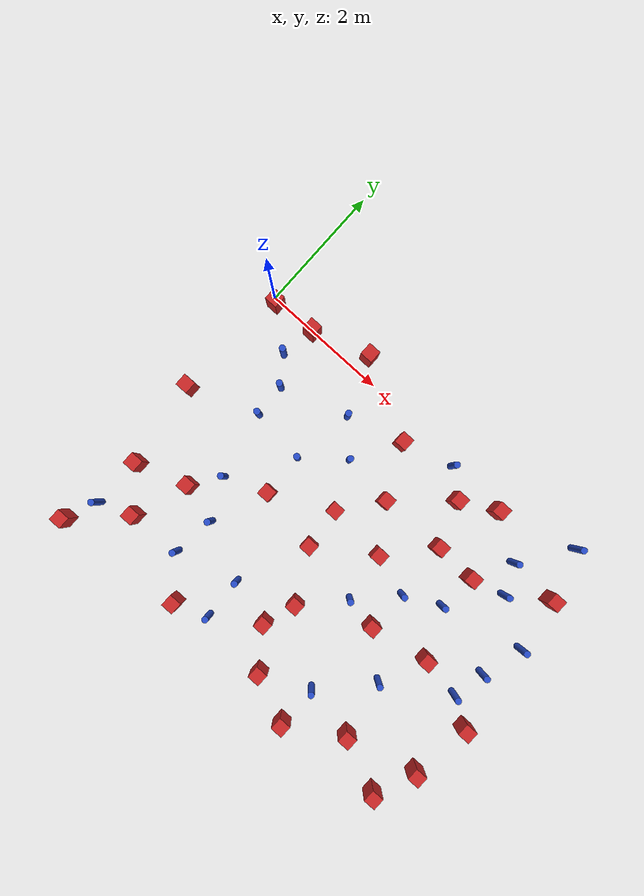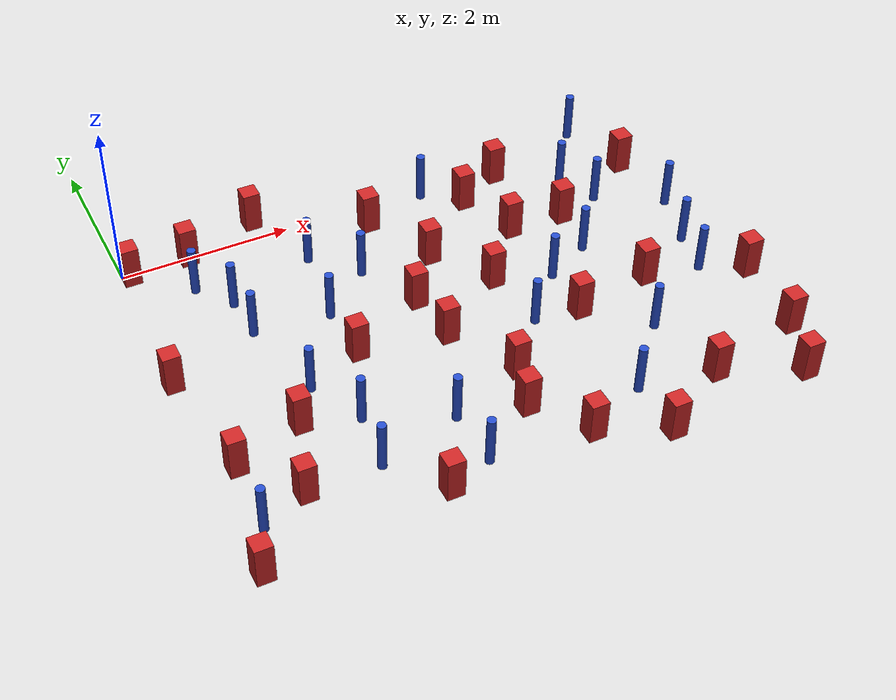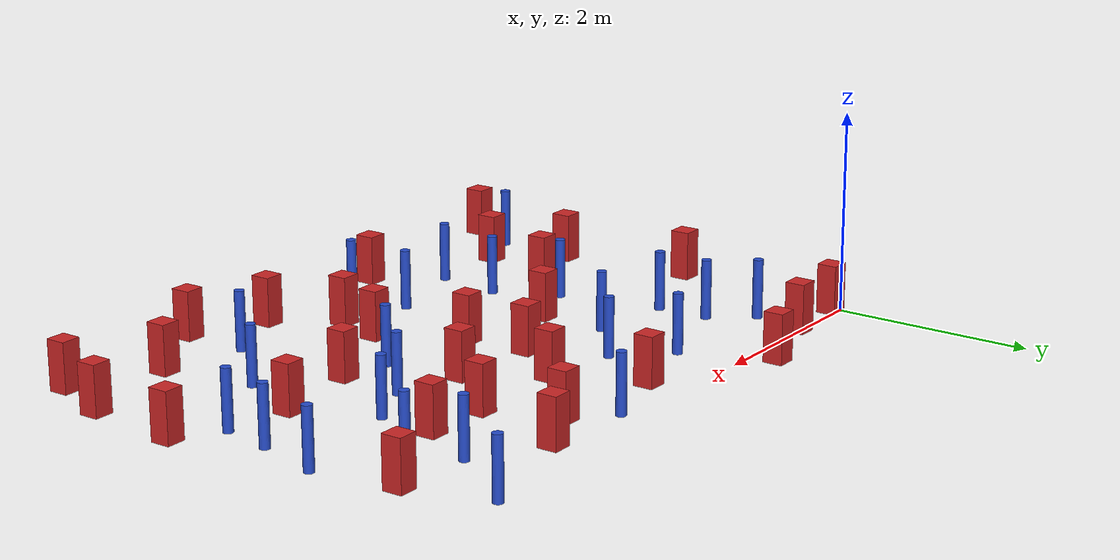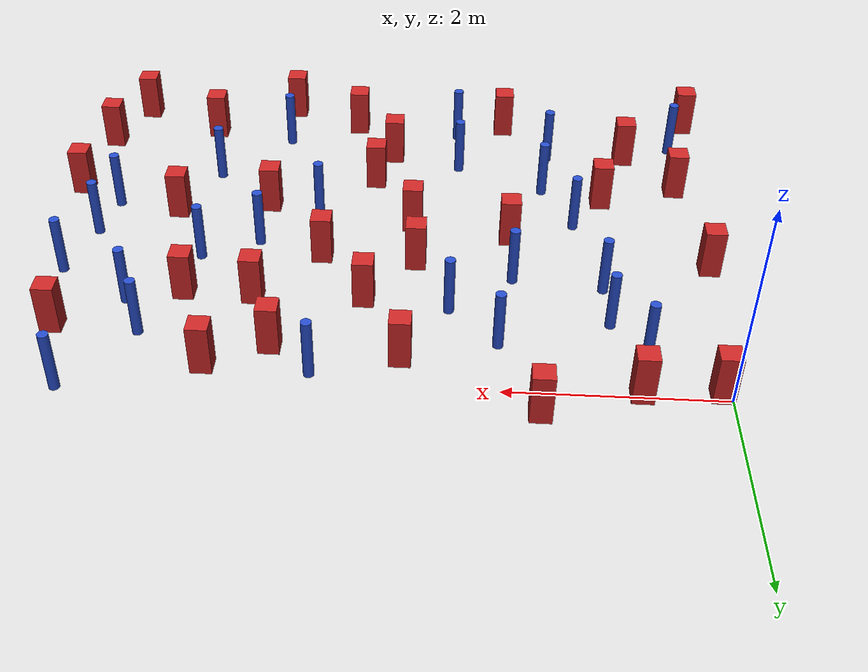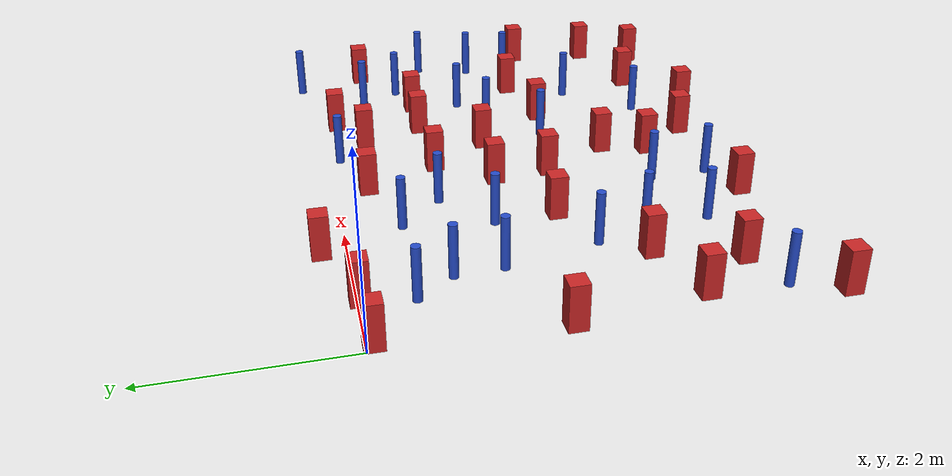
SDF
<sdf version="1.6">
 <model name="dense_86">
  <model name="square_post_obstacle5">
   <static>true</static>
   <pose>5.31786343804 -2.54528029594 8.22691968438e-08 7.2212513382e-06 -7.54495500217e-07 2.29674213826e-05</pose>
   <link name="link">
    <pose>0 0 0.25 0 -0 0</pose>
    <inertial>
     <mass>100</mass>
     <inertia>
      <ixx>0.166667</ixx>
      <ixy>0</ixy>
      <ixz>0</ixz>
      <iyy>0.166667</iyy>
      <iyz>0</iyz>
      <izz>0.166667</izz>
     </inertia>
    </inertial>
    <collision name="collision"><geometry><box><size>.2 .2 .5</size></box></geometry></collision>
    <visual name="visual">
     <geometry><box><size>.2 .2 .5</size></box></geometry>
     <material>
      <script><name>Gazebo/Red</name><uri>file://media/materials/scripts/gazebo.material</uri></script>
     </material>
    </visual>
   </link>
  </model>
  <model name="square_post_obstacle21">
   <static>true</static>
   <pose>-0.101962198539 -4.5727244108 8.22691968438e-08 7.2212513382e-06 -7.54495500217e-07 2.29674213826e-05</pose>
   <link name="link">
    <pose>0 0 0.25 0 -0 0</pose>
    <inertial>
     <mass>100</mass>
     <inertia>
      <ixx>0.166667</ixx>
      <ixy>0</ixy>
      <ixz>0</ixz>
      <iyy>0.166667</iyy>
      <iyz>0</iyz>
      <izz>0.166667</izz>
     </inertia>
    </inertial>
    <collision name="collision"><geometry><box><size>.2 .2 .5</size></box></geometry></collision>
    <visual name="visual">
     <geometry><box><size>.2 .2 .5</size></box></geometry>
     <material>
      <script><name>Gazebo/Red</name><uri>file://media/materials/scripts/gazebo.material</uri></script>
     </material>
    </visual>
   </link>
  </model>
  <model name="pole_obstacle30">
   <static>true</static>
   <pose>2.01759143496 -0.615765364852 2.88873142074e-08 -9.90536689439e-09 4.60219948999e-07 -1.20965994955e-07</pose>
   <link name="link">
    <pose>0 0 0.3 0 -0 0</pose>
    <inertial>
     <mass>1</mass>
     <inertia><ixx>0.145833</ixx><ixy>0</ixy><ixz>0</ixz><iyy>0.145833</iyy><iyz>0</iyz><izz>0.125</izz></inertia>
    </inertial>
    <collision name="collision">
     <geometry><cylinder><radius>0.05</radius><length>.6</length></cylinder></geometry>
    </collision>
    <visual name="visual">
     <geometry><cylinder><radius>0.05</radius><length>.6</length></cylinder></geometry>
     <material>
      <script><name>Gazebo/Blue</name><uri>file://media/materials/scripts/gazebo.material</uri></script>
     </material>
    </visual>
   </link>
  </model>
  <model name="square_post_obstacle28">
   <static>true</static>
   <pose>0.940068849063 -2.9750830167 8.22691968438e-08 7.2212513382e-06 -7.54495500217e-07 2.29674213826e-05</pose>
   <link name="link">
    <pose>0 0 0.25 0 -0 0</pose>
    <inertial>
     <mass>100</mass>
     <inertia>
      <ixx>0.166667</ixx>
      <ixy>0</ixy>
      <ixz>0</ixz>
      <iyy>0.166667</iyy>
      <iyz>0</iyz>
      <izz>0.166667</izz>
     </inertia>
    </inertial>
    <collision name="collision"><geometry><box><size>.2 .2 .5</size></box></geometry></collision>
    <visual name="visual">
     <geometry><box><size>.2 .2 .5</size></box></geometry>
     <material>
      <script><name>Gazebo/Red</name><uri>file://media/materials/scripts/gazebo.material</uri></script>
     </material>
    </visual>
   </link>
  </model>
  <model name="pole_obstacle33">
   <static>true</static>
   <pose>0.980927785817 -0.959379893679 2.88873142074e-08 -9.90536689817e-09 4.6021994899e-07 -1.20965994961e-07</pose>
   <link name="link">
    <pose>0 0 0.3 0 -0 0</pose>
    <inertial>
     <mass>1</mass>
     <inertia><ixx>0.145833</ixx><ixy>0</ixy><ixz>0</ixz><iyy>0.145833</iyy><iyz>0</iyz><izz>0.125</izz></inertia>
    </inertial>
    <collision name="collision">
     <geometry><cylinder><radius>0.05</radius><length>.6</length></cylinder></geometry>
    </collision>
    <visual name="visual">
     <geometry><cylinder><radius>0.05</radius><length>.6</length></cylinder></geometry>
     <material>
      <script><name>Gazebo/Blue</name><uri>file://media/materials/scripts/gazebo.material</uri></script>
     </material>
    </visual>
   </link>
  </model>
  <model name="pole_obstacle35">
   <static>true</static>
   <pose>2.43488918313 -3.55542059706 2.88873142074e-08 -9.90536690232e-09 4.6021994898e-07 -1.20965994968e-07</pose>
   <link name="link">
    <pose>0 0 0.3 0 -0 0</pose>
    <inertial>
     <mass>1</mass>
     <inertia><ixx>0.145833</ixx><ixy>0</ixy><ixz>0</ixz><iyy>0.145833</iyy><iyz>0</iyz><izz>0.125</izz></inertia>
    </inertial>
    <collision name="collision">
     <geometry><cylinder><radius>0.05</radius><length>.6</length></cylinder></geometry>
    </collision>
    <visual name="visual">
     <geometry><cylinder><radius>0.05</radius><length>.6</length></cylinder></geometry>
     <material>
      <script><name>Gazebo/Blue</name><uri>file://media/materials/scripts/gazebo.material</uri></script>
     </material>
    </visual>
   </link>
  </model>
  <model name="square_post_obstacle30">
   <static>true</static>
   <pose>-0.0457896845618 -1.87282870692 8.22691968438e-08 7.2212513382e-06 -7.54495500217e-07 2.29674213826e-05</pose>
   <link name="link">
    <pose>0 0 0.25 0 -0 0</pose>
    <inertial>
     <mass>100</mass>
     <inertia>
      <ixx>0.166667</ixx>
      <ixy>0</ixy>
      <ixz>0</ixz>
      <iyy>0.166667</iyy>
      <iyz>0</iyz>
      <izz>0.166667</izz>
     </inertia>
    </inertial>
    <collision name="collision"><geometry><box><size>.2 .2 .5</size></box></geometry></collision>
    <visual name="visual">
     <geometry><box><size>.2 .2 .5</size></box></geometry>
     <material>
      <script><name>Gazebo/Red</name><uri>file://media/materials/scripts/gazebo.material</uri></script>
     </material>
    </visual>
   </link>
  </model>
  <model name="pole_obstacle37">
   <static>true</static>
   <pose>2.47661276802 -1.08518092991 2.88873142074e-08 -9.90536689395e-09 4.60219949e-07 -1.20965994953e-07</pose>
   <link name="link">
    <pose>0 0 0.3 0 -0 0</pose>
    <inertial>
     <mass>1</mass>
     <inertia><ixx>0.145833</ixx><ixy>0</ixy><ixz>0</ixz><iyy>0.145833</iyy><iyz>0</iyz><izz>0.125</izz></inertia>
    </inertial>
    <collision name="collision">
     <geometry><cylinder><radius>0.05</radius><length>.6</length></cylinder></geometry>
    </collision>
    <visual name="visual">
     <geometry><cylinder><radius>0.05</radius><length>.6</length></cylinder></geometry>
     <material>
      <script><name>Gazebo/Blue</name><uri>file://media/materials/scripts/gazebo.material</uri></script>
     </material>
    </visual>
   </link>
  </model>
  <model name="square_post_obstacle34">
   <static>true</static>
   <pose>2.88535533772 -2.43999606591 8.22691968438e-08 7.2212513382e-06 -7.54495500217e-07 2.29674213826e-05</pose>
   <link name="link">
    <pose>0 0 0.25 0 -0 0</pose>
    <inertial>
     <mass>100</mass>
     <inertia>
      <ixx>0.166667</ixx>
      <ixy>0</ixy>
      <ixz>0</ixz>
      <iyy>0.166667</iyy>
      <iyz>0</iyz>
      <izz>0.166667</izz>
     </inertia>
    </inertial>
    <collision name="collision"><geometry><box><size>.2 .2 .5</size></box></geometry></collision>
    <visual name="visual">
     <geometry><box><size>.2 .2 .5</size></box></geometry>
     <material>
      <script><name>Gazebo/Red</name><uri>file://media/materials/scripts/gazebo.material</uri></script>
     </material>
    </visual>
   </link>
  </model>
  <model name="pole_obstacle44">
   <static>true</static>
   <pose>6.07542081839 -2.14108995029 2.88873142074e-08 -9.90536690245e-09 4.6021994898e-07 -1.20965994966e-07</pose>
   <link name="link">
    <pose>0 0 0.3 0 -0 0</pose>
    <inertial>
     <mass>1</mass>
     <inertia><ixx>0.145833</ixx><ixy>0</ixy><ixz>0</ixz><iyy>0.145833</iyy><iyz>0</iyz><izz>0.125</izz></inertia>
    </inertial>
    <collision name="collision">
     <geometry><cylinder><radius>0.05</radius><length>.6</length></cylinder></geometry>
    </collision>
    <visual name="visual">
     <geometry><cylinder><radius>0.05</radius><length>.6</length></cylinder></geometry>
     <material>
      <script><name>Gazebo/Blue</name><uri>file://media/materials/scripts/gazebo.material</uri></script>
     </material>
    </visual>
   </link>
  </model>
  <model name="square_post_obstacle38">
   <static>true</static>
   <pose>6.43211650648 -2.92535425351 8.22691968438e-08 7.2212513382e-06 -7.54495500217e-07 2.29674213826e-05</pose>
   <link name="link">
    <pose>0 0 0.25 0 -0 0</pose>
    <inertial>
     <mass>100</mass>
     <inertia>
      <ixx>0.166667</ixx>
      <ixy>0</ixy>
      <ixz>0</ixz>
      <iyy>0.166667</iyy>
      <iyz>0</iyz>
      <izz>0.166667</izz>
     </inertia>
    </inertial>
    <collision name="collision"><geometry><box><size>.2 .2 .5</size></box></geometry></collision>
    <visual name="visual">
     <geometry><box><size>.2 .2 .5</size></box></geometry>
     <material>
      <script><name>Gazebo/Red</name><uri>file://media/materials/scripts/gazebo.material</uri></script>
     </material>
    </visual>
   </link>
  </model>
  <model name="square_post_obstacle40">
   <static>true</static>
   <pose>0.144682610594 -3.23700005979 8.22691968438e-08 7.2212513382e-06 -7.54495500217e-07 2.29674213826e-05</pose>
   <link name="link">
    <pose>0 0 0.25 0 -0 0</pose>
    <inertial>
     <mass>100</mass>
     <inertia>
      <ixx>0.166667</ixx>
      <ixy>0</ixy>
      <ixz>0</ixz>
      <iyy>0.166667</iyy>
      <iyz>0</iyz>
      <izz>0.166667</izz>
     </inertia>
    </inertial>
    <collision name="collision"><geometry><box><size>.2 .2 .5</size></box></geometry></collision>
    <visual name="visual">
     <geometry><box><size>.2 .2 .5</size></box></geometry>
     <material>
      <script><name>Gazebo/Red</name><uri>file://media/materials/scripts/gazebo.material</uri></script>
     </material>
    </visual>
   </link>
  </model>
  <model name="square_post_obstacle46">
   <static>true</static>
   <pose>6.32021658059 -3.9000568926 8.22691968438e-08 7.22125133819e-06 -7.54495500217e-07 2.29674213826e-05</pose>
   <link name="link">
    <pose>0 0 0.25 0 -0 0</pose>
    <inertial>
     <mass>100</mass>
     <inertia>
      <ixx>0.166667</ixx>
      <ixy>0</ixy>
      <ixz>0</ixz>
      <iyy>0.166667</iyy>
      <iyz>0</iyz>
      <izz>0.166667</izz>
     </inertia>
    </inertial>
    <collision name="collision"><geometry><box><size>.2 .2 .5</size></box></geometry></collision>
    <visual name="visual">
     <geometry><box><size>.2 .2 .5</size></box></geometry>
     <material>
      <script><name>Gazebo/Red</name><uri>file://media/materials/scripts/gazebo.material</uri></script>
     </material>
    </visual>
   </link>
  </model>
  <model name="pole_obstacle61">
   <static>true</static>
   <pose>1.87616887618 -1.58260095821 2.88873142074e-08 -9.90536689672e-09 4.60219948993e-07 -1.20965994959e-07</pose>
   <link name="link">
    <pose>0 0 0.3 0 -0 0</pose>
    <inertial>
     <mass>1</mass>
     <inertia><ixx>0.145833</ixx><ixy>0</ixy><ixz>0</ixz><iyy>0.145833</iyy><iyz>0</iyz><izz>0.125</izz></inertia>
    </inertial>
    <collision name="collision">
     <geometry><cylinder><radius>0.05</radius><length>.6</length></cylinder></geometry>
    </collision>
    <visual name="visual">
     <geometry><cylinder><radius>0.05</radius><length>.6</length></cylinder></geometry>
     <material>
      <script><name>Gazebo/Blue</name><uri>file://media/materials/scripts/gazebo.material</uri></script>
     </material>
    </visual>
   </link>
  </model>
  <model name="square_post_obstacle58">
   <static>true</static>
   <pose>4.37775303697 -2.71327068398 8.22691968438e-08 7.2212513382e-06 -7.54495500217e-07 2.29674213826e-05</pose>
   <link name="link">
    <pose>0 0 0.25 0 -0 0</pose>
    <inertial>
     <mass>100</mass>
     <inertia>
      <ixx>0.166667</ixx>
      <ixy>0</ixy>
      <ixz>0</ixz>
      <iyy>0.166667</iyy>
      <iyz>0</iyz>
      <izz>0.166667</izz>
     </inertia>
    </inertial>
    <collision name="collision"><geometry><box><size>.2 .2 .5</size></box></geometry></collision>
    <visual name="visual">
     <geometry><box><size>.2 .2 .5</size></box></geometry>
     <material>
      <script><name>Gazebo/Red</name><uri>file://media/materials/scripts/gazebo.material</uri></script>
     </material>
    </visual>
   </link>
  </model>
  <model name="square_post_obstacle59">
   <static>true</static>
   <pose>1.89852772511 -2.26323211245 8.22691968438e-08 7.2212513382e-06 -7.54495500217e-07 2.29674213826e-05</pose>
   <link name="link">
    <pose>0 0 0.25 0 -0 0</pose>
    <inertial>
     <mass>100</mass>
     <inertia>
      <ixx>0.166667</ixx>
      <ixy>0</ixy>
      <ixz>0</ixz>
      <iyy>0.166667</iyy>
      <iyz>0</iyz>
      <izz>0.166667</izz>
     </inertia>
    </inertial>
    <collision name="collision"><geometry><box><size>.2 .2 .5</size></box></geometry></collision>
    <visual name="visual">
     <geometry><box><size>.2 .2 .5</size></box></geometry>
     <material>
      <script><name>Gazebo/Red</name><uri>file://media/materials/scripts/gazebo.material</uri></script>
     </material>
    </visual>
   </link>
  </model>
  <model name="square_post_obstacle68">
   <static>true</static>
   <pose>3.58802159314 -4.34802233731 8.22691968438e-08 7.22125133819e-06 -7.54495500217e-07 2.29674213826e-05</pose>
   <link name="link">
    <pose>0 0 0.25 0 -0 0</pose>
    <inertial>
     <mass>100</mass>
     <inertia>
      <ixx>0.166667</ixx>
      <ixy>0</ixy>
      <ixz>0</ixz>
      <iyy>0.166667</iyy>
      <iyz>0</iyz>
      <izz>0.166667</izz>
     </inertia>
    </inertial>
    <collision name="collision"><geometry><box><size>.2 .2 .5</size></box></geometry></collision>
    <visual name="visual">
     <geometry><box><size>.2 .2 .5</size></box></geometry>
     <material>
      <script><name>Gazebo/Red</name><uri>file://media/materials/scripts/gazebo.material</uri></script>
     </material>
    </visual>
   </link>
  </model>
  <model name="pole_obstacle81">
   <static>true</static>
   <pose>4.95241768015 -1.78619356751 2.88873142074e-08 -9.90536689445e-09 4.60219948999e-07 -1.20965994956e-07</pose>
   <link name="link">
    <pose>0 0 0.3 0 -0 0</pose>
    <inertial>
     <mass>1</mass>
     <inertia><ixx>0.145833</ixx><ixy>0</ixy><ixz>0</ixz><iyy>0.145833</iyy><iyz>0</iyz><izz>0.125</izz></inertia>
    </inertial>
    <collision name="collision">
     <geometry><cylinder><radius>0.05</radius><length>.6</length></cylinder></geometry>
    </collision>
    <visual name="visual">
     <geometry><cylinder><radius>0.05</radius><length>.6</length></cylinder></geometry>
     <material>
      <script><name>Gazebo/Blue</name><uri>file://media/materials/scripts/gazebo.material</uri></script>
     </material>
    </visual>
   </link>
  </model>
  <model name="square_post_obstacle75">
   <static>true</static>
   <pose>5.19147976113 -4.17129760656 8.22691968438e-08 7.22125133819e-06 -7.54495500217e-07 2.29674213826e-05</pose>
   <link name="link">
    <pose>0 0 0.25 0 -0 0</pose>
    <inertial>
     <mass>100</mass>
     <inertia>
      <ixx>0.166667</ixx>
      <ixy>0</ixy>
      <ixz>0</ixz>
      <iyy>0.166667</iyy>
      <iyz>0</iyz>
      <izz>0.166667</izz>
     </inertia>
    </inertial>
    <collision name="collision"><geometry><box><size>.2 .2 .5</size></box></geometry></collision>
    <visual name="visual">
     <geometry><box><size>.2 .2 .5</size></box></geometry>
     <material>
      <script><name>Gazebo/Red</name><uri>file://media/materials/scripts/gazebo.material</uri></script>
     </material>
    </visual>
   </link>
  </model>
  <model name="square_post_obstacle82">
   <static>true</static>
   <pose>0.779144482567 -0.0249562075022 8.22691968438e-08 7.2212513382e-06 -7.54495500217e-07 2.29674213826e-05</pose>
   <link name="link">
    <pose>0 0 0.25 0 -0 0</pose>
    <inertial>
     <mass>100</mass>
     <inertia>
      <ixx>0.166667</ixx>
      <ixy>0</ixy>
      <ixz>0</ixz>
      <iyy>0.166667</iyy>
      <iyz>0</iyz>
      <izz>0.166667</izz>
     </inertia>
    </inertial>
    <collision name="collision"><geometry><box><size>.2 .2 .5</size></box></geometry></collision>
    <visual name="visual">
     <geometry><box><size>.2 .2 .5</size></box></geometry>
     <material>
      <script><name>Gazebo/Red</name><uri>file://media/materials/scripts/gazebo.material</uri></script>
     </material>
    </visual>
   </link>
  </model>
  <model name="square_post_obstacle83">
   <static>true</static>
   <pose>4.3384628491 -1.16914456645 8.22691968438e-08 7.2212513382e-06 -7.54495500217e-07 2.29674213826e-05</pose>
   <link name="link">
    <pose>0 0 0.25 0 -0 0</pose>
    <inertial>
     <mass>100</mass>
     <inertia>
      <ixx>0.166667</ixx>
      <ixy>0</ixy>
      <ixz>0</ixz>
      <iyy>0.166667</iyy>
      <iyz>0</iyz>
      <izz>0.166667</izz>
     </inertia>
    </inertial>
    <collision name="collision"><geometry><box><size>.2 .2 .5</size></box></geometry></collision>
    <visual name="visual">
     <geometry><box><size>.2 .2 .5</size></box></geometry>
     <material>
      <script><name>Gazebo/Red</name><uri>file://media/materials/scripts/gazebo.material</uri></script>
     </material>
    </visual>
   </link>
  </model>
  <model name="pole_obstacle100">
   <static>true</static>
   <pose>1.54686385424 -3.15064544547 2.88873142074e-08 -9.90536689791e-09 4.6021994899e-07 -1.20965994959e-07</pose>
   <link name="link">
    <pose>0 0 0.3 0 -0 0</pose>
    <inertial>
     <mass>1</mass>
     <inertia><ixx>0.145833</ixx><ixy>0</ixy><ixz>0</ixz><iyy>0.145833</iyy><iyz>0</iyz><izz>0.125</izz></inertia>
    </inertial>
    <collision name="collision">
     <geometry><cylinder><radius>0.05</radius><length>.6</length></cylinder></geometry>
    </collision>
    <visual name="visual">
     <geometry><cylinder><radius>0.05</radius><length>.6</length></cylinder></geometry>
     <material>
      <script><name>Gazebo/Blue</name><uri>file://media/materials/scripts/gazebo.material</uri></script>
     </material>
    </visual>
   </link>
  </model>
  <model name="square_post_obstacle92">
   <static>true</static>
   <pose>3.15054136979 -3.74901744311 8.22691968438e-08 7.2212513382e-06 -7.54495500217e-07 2.29674213826e-05</pose>
   <link name="link">
    <pose>0 0 0.25 0 -0 0</pose>
    <inertial>
     <mass>100</mass>
     <inertia>
      <ixx>0.166667</ixx>
      <ixy>0</ixy>
      <ixz>0</ixz>
      <iyy>0.166667</iyy>
      <iyz>0</iyz>
      <izz>0.166667</izz>
     </inertia>
    </inertial>
    <collision name="collision"><geometry><box><size>.2 .2 .5</size></box></geometry></collision>
    <visual name="visual">
     <geometry><box><size>.2 .2 .5</size></box></geometry>
     <material>
      <script><name>Gazebo/Red</name><uri>file://media/materials/scripts/gazebo.material</uri></script>
     </material>
    </visual>
   </link>
  </model>
  <model name="square_post_obstacle95">
   <static>true</static>
   <pose>6.12411599231 -0.635673553487 8.22691968438e-08 7.2212513382e-06 -7.54495500217e-07 2.29674213826e-05</pose>
   <link name="link">
    <pose>0 0 0.25 0 -0 0</pose>
    <inertial>
     <mass>100</mass>
     <inertia>
      <ixx>0.166667</ixx>
      <ixy>0</ixy>
      <ixz>0</ixz>
      <iyy>0.166667</iyy>
      <iyz>0</iyz>
      <izz>0.166667</izz>
     </inertia>
    </inertial>
    <collision name="collision"><geometry><box><size>.2 .2 .5</size></box></geometry></collision>
    <visual name="visual">
     <geometry><box><size>.2 .2 .5</size></box></geometry>
     <material>
      <script><name>Gazebo/Red</name><uri>file://media/materials/scripts/gazebo.material</uri></script>
     </material>
    </visual>
   </link>
  </model>
  <model name="pole_obstacle111">
   <static>true</static>
   <pose>2.46610115731 -4.22277846501 2.88873142074e-08 -9.90536689859e-09 4.60219948989e-07 -1.20965994961e-07</pose>
   <link name="link">
    <pose>0 0 0.3 0 -0 0</pose>
    <inertial>
     <mass>1</mass>
     <inertia><ixx>0.145833</ixx><ixy>0</ixy><ixz>0</ixz><iyy>0.145833</iyy><iyz>0</iyz><izz>0.125</izz></inertia>
    </inertial>
    <collision name="collision">
     <geometry><cylinder><radius>0.05</radius><length>.6</length></cylinder></geometry>
    </collision>
    <visual name="visual">
     <geometry><cylinder><radius>0.05</radius><length>.6</length></cylinder></geometry>
     <material>
      <script><name>Gazebo/Blue</name><uri>file://media/materials/scripts/gazebo.material</uri></script>
     </material>
    </visual>
   </link>
  </model>
  <model name="pole_obstacle113">
   <static>true</static>
   <pose>5.00227952551 -3.2606734221 2.88873142074e-08 -9.90536690245e-09 4.6021994898e-07 -1.20965994966e-07</pose>
   <link name="link">
    <pose>0 0 0.3 0 -0 0</pose>
    <inertial>
     <mass>1</mass>
     <inertia><ixx>0.145833</ixx><ixy>0</ixy><ixz>0</ixz><iyy>0.145833</iyy><iyz>0</iyz><izz>0.125</izz></inertia>
    </inertial>
    <collision name="collision">
     <geometry><cylinder><radius>0.05</radius><length>.6</length></cylinder></geometry>
    </collision>
    <visual name="visual">
     <geometry><cylinder><radius>0.05</radius><length>.6</length></cylinder></geometry>
     <material>
      <script><name>Gazebo/Blue</name><uri>file://media/materials/scripts/gazebo.material</uri></script>
     </material>
    </visual>
   </link>
  </model>
  <model name="pole_obstacle121">
   <static>true</static>
   <pose>1.46903074979 -3.82115608262 2.88873142074e-08 -9.90536689791e-09 4.6021994899e-07 -1.20965994959e-07</pose>
   <link name="link">
    <pose>0 0 0.3 0 -0 0</pose>
    <inertial>
     <mass>1</mass>
     <inertia><ixx>0.145833</ixx><ixy>0</ixy><ixz>0</ixz><iyy>0.145833</iyy><iyz>0</iyz><izz>0.125</izz></inertia>
    </inertial>
    <collision name="collision">
     <geometry><cylinder><radius>0.05</radius><length>.6</length></cylinder></geometry>
    </collision>
    <visual name="visual">
     <geometry><cylinder><radius>0.05</radius><length>.6</length></cylinder></geometry>
     <material>
      <script><name>Gazebo/Blue</name><uri>file://media/materials/scripts/gazebo.material</uri></script>
     </material>
    </visual>
   </link>
  </model>
  <model name="square_post_obstacle121">
   <static>true</static>
   <pose>4.07720784741 -0.465047414351 8.22691968438e-08 7.2212513382e-06 -7.54495500217e-07 2.29674213826e-05</pose>
   <link name="link">
    <pose>0 0 0.25 0 -0 0</pose>
    <inertial>
     <mass>100</mass>
     <inertia>
      <ixx>0.166667</ixx>
      <ixy>0</ixy>
      <ixz>0</ixz>
      <iyy>0.166667</iyy>
      <iyz>0</iyz>
      <izz>0.166667</izz>
     </inertia>
    </inertial>
    <collision name="collision"><geometry><box><size>.2 .2 .5</size></box></geometry></collision>
    <visual name="visual">
     <geometry><box><size>.2 .2 .5</size></box></geometry>
     <material>
      <script><name>Gazebo/Red</name><uri>file://media/materials/scripts/gazebo.material</uri></script>
     </material>
    </visual>
   </link>
  </model>
  <model name="pole_obstacle124">
   <static>true</static>
   <pose>5.9761643938 -2.65296786863 2.88873142074e-08 -9.90536690245e-09 4.6021994898e-07 -1.20965994966e-07</pose>
   <link name="link">
    <pose>0 0 0.3 0 -0 0</pose>
    <inertial>
     <mass>1</mass>
     <inertia><ixx>0.145833</ixx><ixy>0</ixy><ixz>0</ixz><iyy>0.145833</iyy><iyz>0</iyz><izz>0.125</izz></inertia>
    </inertial>
    <collision name="collision">
     <geometry><cylinder><radius>0.05</radius><length>.6</length></cylinder></geometry>
    </collision>
    <visual name="visual">
     <geometry><cylinder><radius>0.05</radius><length>.6</length></cylinder></geometry>
     <material>
      <script><name>Gazebo/Blue</name><uri>file://media/materials/scripts/gazebo.material</uri></script>
     </material>
    </visual>
   </link>
  </model>
  <model name="square_post_obstacle129">
   <static>true</static>
   <pose>6.05348626226 -4.55975874972 8.22691968438e-08 7.22125133819e-06 -7.54495500217e-07 2.29674213826e-05</pose>
   <link name="link">
    <pose>0 0 0.25 0 -0 0</pose>
    <inertial>
     <mass>100</mass>
     <inertia>
      <ixx>0.166667</ixx>
      <ixy>0</ixy>
      <ixz>0</ixz>
      <iyy>0.166667</iyy>
      <iyz>0</iyz>
      <izz>0.166667</izz>
     </inertia>
    </inertial>
    <collision name="collision"><geometry><box><size>.2 .2 .5</size></box></geometry></collision>
    <visual name="visual">
     <geometry><box><size>.2 .2 .5</size></box></geometry>
     <material>
      <script><name>Gazebo/Red</name><uri>file://media/materials/scripts/gazebo.material</uri></script>
     </material>
    </visual>
   </link>
  </model>
  <model name="square_post_obstacle131">
   <static>true</static>
   <pose>3.28459243078 -1.18343457644 8.22691968438e-08 7.2212513382e-06 -7.54495500217e-07 2.29674213826e-05</pose>
   <link name="link">
    <pose>0 0 0.25 0 -0 0</pose>
    <inertial>
     <mass>100</mass>
     <inertia>
      <ixx>0.166667</ixx>
      <ixy>0</ixy>
      <ixz>0</ixz>
      <iyy>0.166667</iyy>
      <iyz>0</iyz>
      <izz>0.166667</izz>
     </inertia>
    </inertial>
    <collision name="collision"><geometry><box><size>.2 .2 .5</size></box></geometry></collision>
    <visual name="visual">
     <geometry><box><size>.2 .2 .5</size></box></geometry>
     <material>
      <script><name>Gazebo/Red</name><uri>file://media/materials/scripts/gazebo.material</uri></script>
     </material>
    </visual>
   </link>
  </model>
  <model name="square_post_obstacle136">
   <static>true</static>
   <pose>0.087288784596 -0.0700266478977 8.22691968438e-08 7.2212513382e-06 -7.54495500217e-07 2.29674213826e-05</pose>
   <link name="link">
    <pose>0 0 0.25 0 -0 0</pose>
    <inertial>
     <mass>100</mass>
     <inertia>
      <ixx>0.166667</ixx>
      <ixy>0</ixy>
      <ixz>0</ixz>
      <iyy>0.166667</iyy>
      <iyz>0</iyz>
      <izz>0.166667</izz>
     </inertia>
    </inertial>
    <collision name="collision"><geometry><box><size>.2 .2 .5</size></box></geometry></collision>
    <visual name="visual">
     <geometry><box><size>.2 .2 .5</size></box></geometry>
     <material>
      <script><name>Gazebo/Red</name><uri>file://media/materials/scripts/gazebo.material</uri></script>
     </material>
    </visual>
   </link>
  </model>
  <model name="square_post_obstacle137">
   <static>true</static>
   <pose>3.31383820803 -3.22889593247 8.22691968438e-08 7.2212513382e-06 -7.54495500217e-07 2.29674213826e-05</pose>
   <link name="link">
    <pose>0 0 0.25 0 -0 0</pose>
    <inertial>
     <mass>100</mass>
     <inertia>
      <ixx>0.166667</ixx>
      <ixy>0</ixy>
      <ixz>0</ixz>
      <iyy>0.166667</iyy>
      <iyz>0</iyz>
      <izz>0.166667</izz>
     </inertia>
    </inertial>
    <collision name="collision"><geometry><box><size>.2 .2 .5</size></box></geometry></collision>
    <visual name="visual">
     <geometry><box><size>.2 .2 .5</size></box></geometry>
     <material>
      <script><name>Gazebo/Red</name><uri>file://media/materials/scripts/gazebo.material</uri></script>
     </material>
    </visual>
   </link>
  </model>
  <model name="square_post_obstacle138">
   <static>true</static>
   <pose>2.89085427067 -0.361681364712 8.22691968438e-08 7.2212513382e-06 -7.54495500217e-07 2.29674213826e-05</pose>
   <link name="link">
    <pose>0 0 0.25 0 -0 0</pose>
    <inertial>
     <mass>100</mass>
     <inertia>
      <ixx>0.166667</ixx>
      <ixy>0</ixy>
      <ixz>0</ixz>
      <iyy>0.166667</iyy>
      <iyz>0</iyz>
      <izz>0.166667</izz>
     </inertia>
    </inertial>
    <collision name="collision"><geometry><box><size>.2 .2 .5</size></box></geometry></collision>
    <visual name="visual">
     <geometry><box><size>.2 .2 .5</size></box></geometry>
     <material>
      <script><name>Gazebo/Red</name><uri>file://media/materials/scripts/gazebo.material</uri></script>
     </material>
    </visual>
   </link>
  </model>
  <model name="pole_obstacle142">
   <static>true</static>
   <pose>0.677306849116 -0.555156514186 2.88873142074e-08 -9.90536689967e-09 4.60219948986e-07 -1.20965994963e-07</pose>
   <link name="link">
    <pose>0 0 0.3 0 -0 0</pose>
    <inertial>
     <mass>1</mass>
     <inertia><ixx>0.145833</ixx><ixy>0</ixy><ixz>0</ixz><iyy>0.145833</iyy><iyz>0</iyz><izz>0.125</izz></inertia>
    </inertial>
    <collision name="collision">
     <geometry><cylinder><radius>0.05</radius><length>.6</length></cylinder></geometry>
    </collision>
    <visual name="visual">
     <geometry><cylinder><radius>0.05</radius><length>.6</length></cylinder></geometry>
     <material>
      <script><name>Gazebo/Blue</name><uri>file://media/materials/scripts/gazebo.material</uri></script>
     </material>
    </visual>
   </link>
  </model>
  <model name="pole_obstacle144">
   <static>true</static>
   <pose>5.87548633294 0.177966807355 2.88873142074e-08 -9.90536689378e-09 4.60219949e-07 -1.20965994955e-07</pose>
   <link name="link">
    <pose>0 0 0.3 0 -0 0</pose>
    <inertial>
     <mass>1</mass>
     <inertia><ixx>0.145833</ixx><ixy>0</ixy><ixz>0</ixz><iyy>0.145833</iyy><iyz>0</iyz><izz>0.125</izz></inertia>
    </inertial>
    <collision name="collision">
     <geometry><cylinder><radius>0.05</radius><length>.6</length></cylinder></geometry>
    </collision>
    <visual name="visual">
     <geometry><cylinder><radius>0.05</radius><length>.6</length></cylinder></geometry>
     <material>
      <script><name>Gazebo/Blue</name><uri>file://media/materials/scripts/gazebo.material</uri></script>
     </material>
    </visual>
   </link>
  </model>
  <model name="pole_obstacle158">
   <static>true</static>
   <pose>0.108047487518 -4.06046299516 2.88873142074e-08 -9.90536689742e-09 4.60219948992e-07 -1.2096599496e-07</pose>
   <link name="link">
    <pose>0 0 0.3 0 -0 0</pose>
    <inertial>
     <mass>1</mass>
     <inertia><ixx>0.145833</ixx><ixy>0</ixy><ixz>0</ixz><iyy>0.145833</iyy><iyz>0</iyz><izz>0.125</izz></inertia>
    </inertial>
    <collision name="collision">
     <geometry><cylinder><radius>0.05</radius><length>.6</length></cylinder></geometry>
    </collision>
    <visual name="visual">
     <geometry><cylinder><radius>0.05</radius><length>.6</length></cylinder></geometry>
     <material>
      <script><name>Gazebo/Blue</name><uri>file://media/materials/scripts/gazebo.material</uri></script>
     </material>
    </visual>
   </link>
  </model>
  <model name="pole_obstacle160">
   <static>true</static>
   <pose>3.68274872709 -0.123488795815 2.88873142074e-08 -9.90536689544e-09 4.60219948996e-07 -1.20965994957e-07</pose>
   <link name="link">
    <pose>0 0 0.3 0 -0 0</pose>
    <inertial>
     <mass>1</mass>
     <inertia><ixx>0.145833</ixx><ixy>0</ixy><ixz>0</ixz><iyy>0.145833</iyy><iyz>0</iyz><izz>0.125</izz></inertia>
    </inertial>
    <collision name="collision">
     <geometry><cylinder><radius>0.05</radius><length>.6</length></cylinder></geometry>
    </collision>
    <visual name="visual">
     <geometry><cylinder><radius>0.05</radius><length>.6</length></cylinder></geometry>
     <material>
      <script><name>Gazebo/Blue</name><uri>file://media/materials/scripts/gazebo.material</uri></script>
     </material>
    </visual>
   </link>
  </model>
  <model name="square_post_obstacle154">
   <static>true</static>
   <pose>1.9492582182 -4.40971305928 8.22691968438e-08 7.2212513382e-06 -7.54495500217e-07 2.29674213826e-05</pose>
   <link name="link">
    <pose>0 0 0.25 0 -0 0</pose>
    <inertial>
     <mass>100</mass>
     <inertia>
      <ixx>0.166667</ixx>
      <ixy>0</ixy>
      <ixz>0</ixz>
      <iyy>0.166667</iyy>
      <iyz>0</iyz>
      <izz>0.166667</izz>
     </inertia>
    </inertial>
    <collision name="collision"><geometry><box><size>.2 .2 .5</size></box></geometry></collision>
    <visual name="visual">
     <geometry><box><size>.2 .2 .5</size></box></geometry>
     <material>
      <script><name>Gazebo/Red</name><uri>file://media/materials/scripts/gazebo.material</uri></script>
     </material>
    </visual>
   </link>
  </model>
  <model name="square_post_obstacle159">
   <static>true</static>
   <pose>4.63507756851 -0.170489444369 8.22691968438e-08 7.2212513382e-06 -7.54495500217e-07 2.29674213826e-05</pose>
   <link name="link">
    <pose>0 0 0.25 0 -0 0</pose>
    <inertial>
     <mass>100</mass>
     <inertia>
      <ixx>0.166667</ixx>
      <ixy>0</ixy>
      <ixz>0</ixz>
      <iyy>0.166667</iyy>
      <iyz>0</iyz>
      <izz>0.166667</izz>
     </inertia>
    </inertial>
    <collision name="collision"><geometry><box><size>.2 .2 .5</size></box></geometry></collision>
    <visual name="visual">
     <geometry><box><size>.2 .2 .5</size></box></geometry>
     <material>
      <script><name>Gazebo/Red</name><uri>file://media/materials/scripts/gazebo.material</uri></script>
     </material>
    </visual>
   </link>
  </model>
  <model name="square_post_obstacle161">
   <static>true</static>
   <pose>0.634255326492 -3.84764798586 8.22691968438e-08 7.2212513382e-06 -7.54495500217e-07 2.29674213826e-05</pose>
   <link name="link">
    <pose>0 0 0.25 0 -0 0</pose>
    <inertial>
     <mass>100</mass>
     <inertia>
      <ixx>0.166667</ixx>
      <ixy>0</ixy>
      <ixz>0</ixz>
      <iyy>0.166667</iyy>
      <iyz>0</iyz>
      <izz>0.166667</izz>
     </inertia>
    </inertial>
    <collision name="collision"><geometry><box><size>.2 .2 .5</size></box></geometry></collision>
    <visual name="visual">
     <geometry><box><size>.2 .2 .5</size></box></geometry>
     <material>
      <script><name>Gazebo/Red</name><uri>file://media/materials/scripts/gazebo.material</uri></script>
     </material>
    </visual>
   </link>
  </model>
  <model name="square_post_obstacle162">
   <static>true</static>
   <pose>3.74961141501 -1.85672793688 8.22691968438e-08 7.2212513382e-06 -7.54495500217e-07 2.29674213826e-05</pose>
   <link name="link">
    <pose>0 0 0.25 0 -0 0</pose>
    <inertial>
     <mass>100</mass>
     <inertia>
      <ixx>0.166667</ixx>
      <ixy>0</ixy>
      <ixz>0</ixz>
      <iyy>0.166667</iyy>
      <iyz>0</iyz>
      <izz>0.166667</izz>
     </inertia>
    </inertial>
    <collision name="collision"><geometry><box><size>.2 .2 .5</size></box></geometry></collision>
    <visual name="visual">
     <geometry><box><size>.2 .2 .5</size></box></geometry>
     <material>
      <script><name>Gazebo/Red</name><uri>file://media/materials/scripts/gazebo.material</uri></script>
     </material>
    </visual>
   </link>
  </model>
  <model name="pole_obstacle167">
   <static>true</static>
   <pose>5.3208289241 -0.594580976757 2.88873142074e-08 -9.90536689837e-09 4.60219948989e-07 -1.2096599496e-07</pose>
   <link name="link">
    <pose>0 0 0.3 0 -0 0</pose>
    <inertial>
     <mass>1</mass>
     <inertia><ixx>0.145833</ixx><ixy>0</ixy><ixz>0</ixz><iyy>0.145833</iyy><iyz>0</iyz><izz>0.125</izz></inertia>
    </inertial>
    <collision name="collision">
     <geometry><cylinder><radius>0.05</radius><length>.6</length></cylinder></geometry>
    </collision>
    <visual name="visual">
     <geometry><cylinder><radius>0.05</radius><length>.6</length></cylinder></geometry>
     <material>
      <script><name>Gazebo/Blue</name><uri>file://media/materials/scripts/gazebo.material</uri></script>
     </material>
    </visual>
   </link>
  </model>
  <model name="pole_obstacle168">
   <static>true</static>
   <pose>6.26376191358 -1.48380141877 2.88873142074e-08 -9.90536689445e-09 4.60219948999e-07 -1.20965994956e-07</pose>
   <link name="link">
    <pose>0 0 0.3 0 -0 0</pose>
    <inertial>
     <mass>1</mass>
     <inertia><ixx>0.145833</ixx><ixy>0</ixy><ixz>0</ixz><iyy>0.145833</iyy><iyz>0</iyz><izz>0.125</izz></inertia>
    </inertial>
    <collision name="collision">
     <geometry><cylinder><radius>0.05</radius><length>.6</length></cylinder></geometry>
    </collision>
    <visual name="visual">
     <geometry><cylinder><radius>0.05</radius><length>.6</length></cylinder></geometry>
     <material>
      <script><name>Gazebo/Blue</name><uri>file://media/materials/scripts/gazebo.material</uri></script>
     </material>
    </visual>
   </link>
  </model>
  <model name="square_post_obstacle171">
   <static>true</static>
   <pose>1.66209825627 0.26279186386 8.22691968438e-08 7.22125133819e-06 -7.54495500217e-07 2.29674213826e-05</pose>
   <link name="link">
    <pose>0 0 0.25 0 -0 0</pose>
    <inertial>
     <mass>100</mass>
     <inertia>
      <ixx>0.166667</ixx>
      <ixy>0</ixy>
      <ixz>0</ixz>
      <iyy>0.166667</iyy>
      <iyz>0</iyz>
      <izz>0.166667</izz>
     </inertia>
    </inertial>
    <collision name="collision"><geometry><box><size>.2 .2 .5</size></box></geometry></collision>
    <visual name="visual">
     <geometry><box><size>.2 .2 .5</size></box></geometry>
     <material>
      <script><name>Gazebo/Red</name><uri>file://media/materials/scripts/gazebo.material</uri></script>
     </material>
    </visual>
   </link>
  </model>
  <model name="pole_obstacle181">
   <static>true</static>
   <pose>1.01111556006 -1.4812050821 2.88873142074e-08 -9.90536689555e-09 4.60219948996e-07 -1.20965994954e-07</pose>
   <link name="link">
    <pose>0 0 0.3 0 -0 0</pose>
    <inertial>
     <mass>1</mass>
     <inertia><ixx>0.145833</ixx><ixy>0</ixy><ixz>0</ixz><iyy>0.145833</iyy><iyz>0</iyz><izz>0.125</izz></inertia>
    </inertial>
    <collision name="collision">
     <geometry><cylinder><radius>0.05</radius><length>.6</length></cylinder></geometry>
    </collision>
    <visual name="visual">
     <geometry><cylinder><radius>0.05</radius><length>.6</length></cylinder></geometry>
     <material>
      <script><name>Gazebo/Blue</name><uri>file://media/materials/scripts/gazebo.material</uri></script>
     </material>
    </visual>
   </link>
  </model>
  <model name="square_post_obstacle182">
   <static>true</static>
   <pose>4.34013839052 -4.68117877684 8.22691968438e-08 7.2212513382e-06 -7.54495500217e-07 2.29674213826e-05</pose>
   <link name="link">
    <pose>0 0 0.25 0 -0 0</pose>
    <inertial>
     <mass>100</mass>
     <inertia>
      <ixx>0.166667</ixx>
      <ixy>0</ixy>
      <ixz>0</ixz>
      <iyy>0.166667</iyy>
      <iyz>0</iyz>
      <izz>0.166667</izz>
     </inertia>
    </inertial>
    <collision name="collision"><geometry><box><size>.2 .2 .5</size></box></geometry></collision>
    <visual name="visual">
     <geometry><box><size>.2 .2 .5</size></box></geometry>
     <material>
      <script><name>Gazebo/Red</name><uri>file://media/materials/scripts/gazebo.material</uri></script>
     </material>
    </visual>
   </link>
  </model>
  <model name="pole_obstacle183">
   <static>true</static>
   <pose>4.33603778157 -4.01074921902 2.88873142074e-08 -9.90536690819e-09 4.60219948966e-07 -1.20965994975e-07</pose>
   <link name="link">
    <pose>0 0 0.3 0 -0 0</pose>
    <inertial>
     <mass>1</mass>
     <inertia><ixx>0.145833</ixx><ixy>0</ixy><ixz>0</ixz><iyy>0.145833</iyy><iyz>0</iyz><izz>0.125</izz></inertia>
    </inertial>
    <collision name="collision">
     <geometry><cylinder><radius>0.05</radius><length>.6</length></cylinder></geometry>
    </collision>
    <visual name="visual">
     <geometry><cylinder><radius>0.05</radius><length>.6</length></cylinder></geometry>
     <material>
      <script><name>Gazebo/Blue</name><uri>file://media/materials/scripts/gazebo.material</uri></script>
     </material>
    </visual>
   </link>
  </model>
  <model name="square_post_obstacle190">
   <static>true</static>
   <pose>5.00233139646 -1.19386590558 8.22691968438e-08 7.2212513382e-06 -7.54495500217e-07 2.29674213826e-05</pose>
   <link name="link">
    <pose>0 0 0.25 0 -0 0</pose>
    <inertial>
     <mass>100</mass>
     <inertia>
      <ixx>0.166667</ixx>
      <ixy>0</ixy>
      <ixz>0</ixz>
      <iyy>0.166667</iyy>
      <iyz>0</iyz>
      <izz>0.166667</izz>
     </inertia>
    </inertial>
    <collision name="collision"><geometry><box><size>.2 .2 .5</size></box></geometry></collision>
    <visual name="visual">
     <geometry><box><size>.2 .2 .5</size></box></geometry>
     <material>
      <script><name>Gazebo/Red</name><uri>file://media/materials/scripts/gazebo.material</uri></script>
     </material>
    </visual>
   </link>
  </model>
  <model name="pole_obstacle188">
   <static>true</static>
   <pose>5.53814000596 -1.05076905337 2.88873142074e-08 -9.90536689445e-09 4.60219948999e-07 -1.20965994956e-07</pose>
   <link name="link">
    <pose>0 0 0.3 0 -0 0</pose>
    <inertial>
     <mass>1</mass>
     <inertia><ixx>0.145833</ixx><ixy>0</ixy><ixz>0</ixz><iyy>0.145833</iyy><iyz>0</iyz><izz>0.125</izz></inertia>
    </inertial>
    <collision name="collision">
     <geometry><cylinder><radius>0.05</radius><length>.6</length></cylinder></geometry>
    </collision>
    <visual name="visual">
     <geometry><cylinder><radius>0.05</radius><length>.6</length></cylinder></geometry>
     <material>
      <script><name>Gazebo/Blue</name><uri>file://media/materials/scripts/gazebo.material</uri></script>
     </material>
    </visual>
   </link>
  </model>
  <model name="square_post_obstacle198">
   <static>true</static>
   <pose>2.82110433624 -1.79528367063 8.22691968438e-08 7.2212513382e-06 -7.54495500217e-07 2.29674213826e-05</pose>
   <link name="link">
    <pose>0 0 0.25 0 -0 0</pose>
    <inertial>
     <mass>100</mass>
     <inertia>
      <ixx>0.166667</ixx>
      <ixy>0</ixy>
      <ixz>0</ixz>
      <iyy>0.166667</iyy>
      <iyz>0</iyz>
      <izz>0.166667</izz>
     </inertia>
    </inertial>
    <collision name="collision"><geometry><box><size>.2 .2 .5</size></box></geometry></collision>
    <visual name="visual">
     <geometry><box><size>.2 .2 .5</size></box></geometry>
     <material>
      <script><name>Gazebo/Red</name><uri>file://media/materials/scripts/gazebo.material</uri></script>
     </material>
    </visual>
   </link>
  </model>
  <model name="pole_obstacle191">
   <static>true</static>
   <pose>3.86479677718 -2.62864701821 2.88873142074e-08 -9.90536690232e-09 4.6021994898e-07 -1.20965994968e-07</pose>
   <link name="link">
    <pose>0 0 0.3 0 -0 0</pose>
    <inertial>
     <mass>1</mass>
     <inertia><ixx>0.145833</ixx><ixy>0</ixy><ixz>0</ixz><iyy>0.145833</iyy><iyz>0</iyz><izz>0.125</izz></inertia>
    </inertial>
    <collision name="collision">
     <geometry><cylinder><radius>0.05</radius><length>.6</length></cylinder></geometry>
    </collision>
    <visual name="visual">
     <geometry><cylinder><radius>0.05</radius><length>.6</length></cylinder></geometry>
     <material>
      <script><name>Gazebo/Blue</name><uri>file://media/materials/scripts/gazebo.material</uri></script>
     </material>
    </visual>
   </link>
  </model>
  <model name="pole_obstacle206">
   <static>true</static>
   <pose>4.40287803513 -2.05980797383 2.88873142074e-08 -9.90536690245e-09 4.6021994898e-07 -1.20965994966e-07</pose>
   <link name="link">
    <pose>0 0 0.3 0 -0 0</pose>
    <inertial>
     <mass>1</mass>
     <inertia><ixx>0.145833</ixx><ixy>0</ixy><ixz>0</ixz><iyy>0.145833</iyy><iyz>0</iyz><izz>0.125</izz></inertia>
    </inertial>
    <collision name="collision">
     <geometry><cylinder><radius>0.05</radius><length>.6</length></cylinder></geometry>
    </collision>
    <visual name="visual">
     <geometry><cylinder><radius>0.05</radius><length>.6</length></cylinder></geometry>
     <material>
      <script><name>Gazebo/Blue</name><uri>file://media/materials/scripts/gazebo.material</uri></script>
     </material>
    </visual>
   </link>
  </model>
  <model name="pole_obstacle211">
   <static>true</static>
   <pose>1.24457891434 -2.5249501224 2.88873142074e-08 -9.90536689791e-09 4.6021994899e-07 -1.20965994959e-07</pose>
   <link name="link">
    <pose>0 0 0.3 0 -0 0</pose>
    <inertial>
     <mass>1</mass>
     <inertia><ixx>0.145833</ixx><ixy>0</ixy><ixz>0</ixz><iyy>0.145833</iyy><iyz>0</iyz><izz>0.125</izz></inertia>
    </inertial>
    <collision name="collision">
     <geometry><cylinder><radius>0.05</radius><length>.6</length></cylinder></geometry>
    </collision>
    <visual name="visual">
     <geometry><cylinder><radius>0.05</radius><length>.6</length></cylinder></geometry>
     <material>
      <script><name>Gazebo/Blue</name><uri>file://media/materials/scripts/gazebo.material</uri></script>
     </material>
    </visual>
   </link>
  </model>
 </model>
</sdf>
